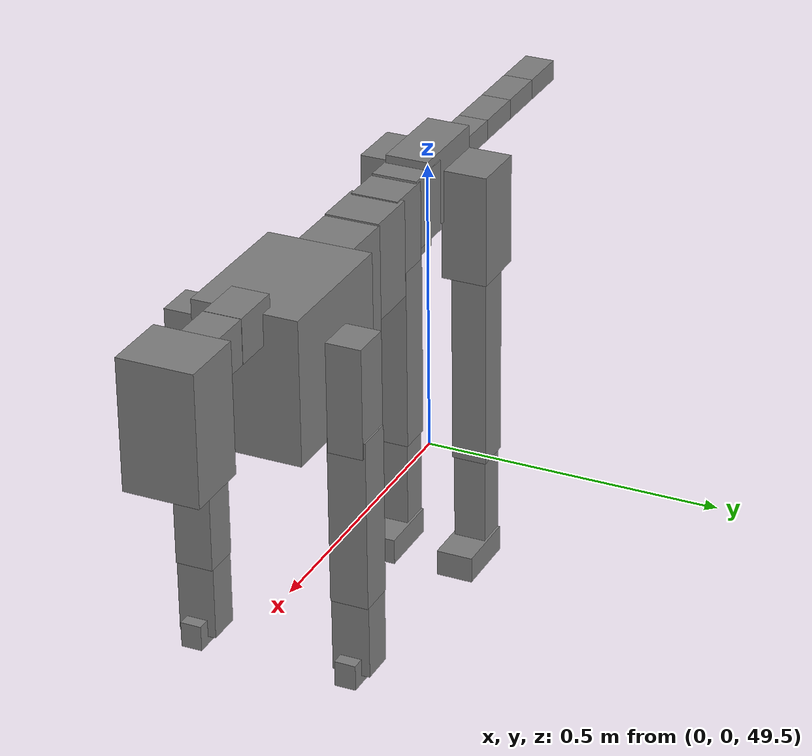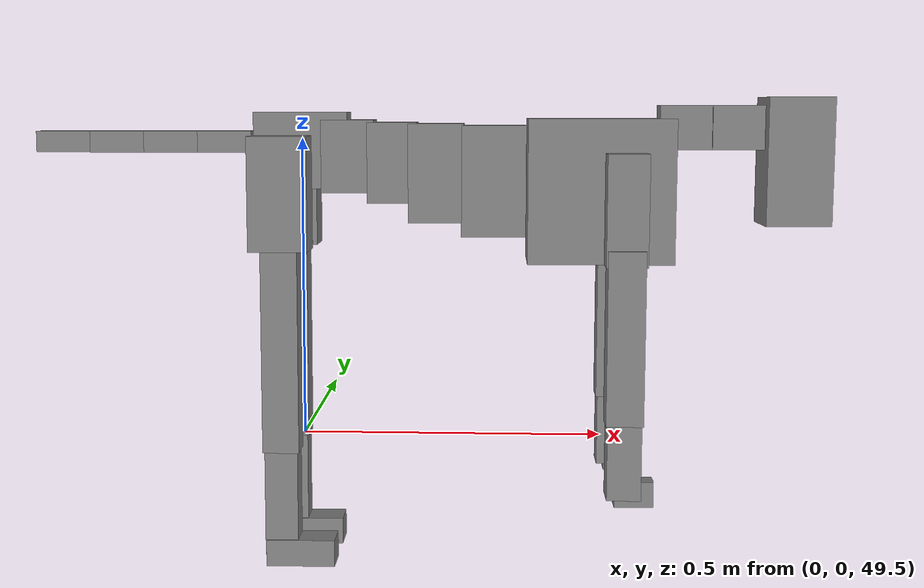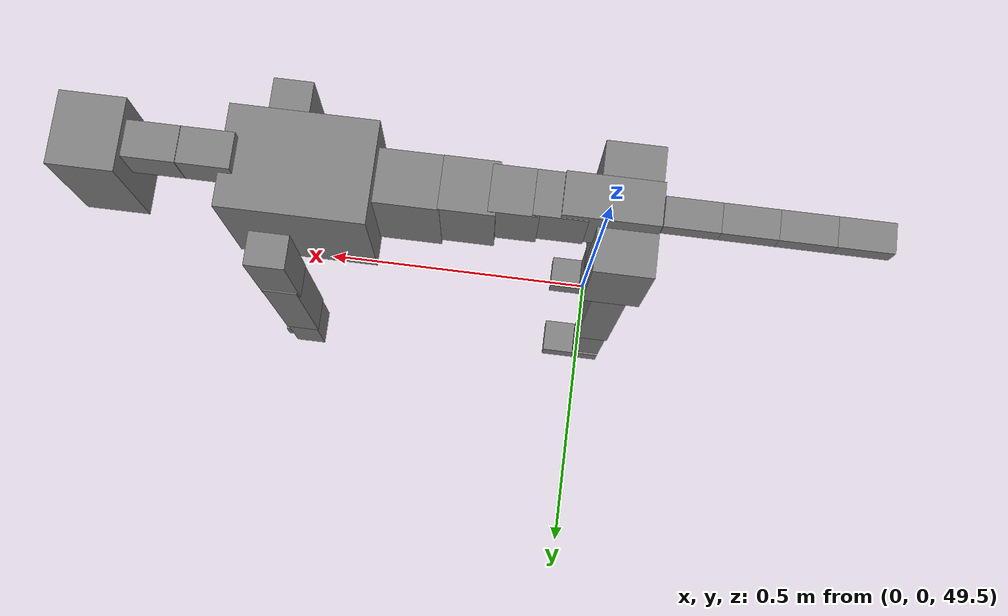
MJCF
<mujoco model="dog">

    <default>
        <joint armature="0.02" stiffness="1" damping="0.2" limited="true"/>
        <geom condim="3" friction="1 0.05 0.05" margin="0.01"/>
        <motor ctrllimited="true" ctrlrange="-1.0 1.0" forcelimited="true" gear="50"/>
    </default>

    <compiler inertiafromgeom="true" angle="radian"/>

    <option timestep="0.016" iterations="50" tolerance="1e-10" solver="Newton" jacobian="dense" cone="pyramidal"/>

    <size nconmax="20000" njmax="60000" nstack="5000000"/>
    <visual>
        <map force="0.1" zfar="30"/>
        <rgba haze="0.15 0.25 0.35 1"/>
        <quality shadowsize="2048"/>
        <global offwidth="800" offheight="800"/>
    </visual>

    <asset>
        <texture type="skybox" builtin="gradient" rgb1="0.3 0.5 0.7" rgb2="0 0 0" width="512" height="512"/>
        <texture name="texplane" type="2d" builtin="checker" rgb1=".2 .3 .4" rgb2=".1 0.15 0.2" width="512" height="512"
                 mark="cross" markrgb=".8 .8 .8"/>
        <texture name="texgeom" type="cube" builtin="flat" mark="cross" width="127" height="1278" rgb1="0.8 0.6 0.4"
                 rgb2="0.8 0.6 0.4" markrgb="1 1 1" random="0.01"/>

        <material name="matplane" reflectance="0.3" texture="texplane" texrepeat="1 1" texuniform="true"/>
        <material name="matgeom" texture="texgeom" texuniform="true" rgba="0.8 0.6 .4 1"/>
    </asset>

    <worldbody>
        <geom name="floor" pos="0 0 0" size="0 0 .25" type="plane" material="matplane" condim="3"/>

        <light directional="false" diffuse=".2 .2 .2" specular="0 0 0" pos="0 0 5" dir="0 0 -1" castshadow="false"/>
        <light mode="targetbodycom" target="torso" directional="false" diffuse=".8 .8 .8" specular="0.3 0.3 0.3"
               pos="0 0 4.0" dir="0 0 -1"/>

        <body name="root" pos="0 0 50">
            <freejoint name="root_1"/>
            <geom type="box" pos="0 0 -0.02" size="0.0774  0.0358  0.063" density="2030"/>

            <body name="spine1" pos="0.054 0 0">
                <joint name="spine1_y" axis="0 1 0" range="0 0.7" limited="true"/>
                <geom type="box" pos="0.02375 0 -0.03" size="0.04375  0.0375  0.05985" density="2030"/>

                <body name="spine2" pos="0.0612 0 0">
                    <joint name="spine2_y" axis="0 1 0" range="-0.15 0.15" limited="true"/>
                    <geom type="box" pos="0.03555  0  -0.04" size="0.04055  0.039  0.06615" density="2030"/>

                    <body name="spine3" pos="0.0730 0 0">
                        <joint name="spine3_y" axis="0 1 0" range="-0.15 0.15" limited="true"/>
                        <geom type="box" pos="0.03555  0  -0.057" size="0.04555  0.0445  0.081" density="2030"/>

                        <body name="spine4" pos="0.0780 0 0">
                            <joint name="spine4_y" axis="0 1 0" range="-0.15 0.15" limited="true"/>
                            <geom type="box" pos="0.05265  0  -0.07" size="0.05265  0.045  0.09135" density="2030"/>

                            <body name="torso" pos="0.1082 0 0">
                                <joint name="torso_y" axis="0 1 0" range="-0.15 0.15" limited="true"/>
                                <geom type="box" pos="0.11925  0  -0.085" size="0.11925  0.085  0.11745"
                                      density="2030"/>

                                <body name="neck1" pos="0.2160  0   0.0180">
                                    <joint name="neck1_y" axis="0 1 0" range="-1.2  -1" limited="true"/>
                                    <geom type="box" pos="0.0423  0  0" size="0.0423  0.03  0.036" density="2325"/>

                                    <body name="neck2" pos="0.0853  0  0">
                                        <joint name="neck2_y" axis="0 1 0" range="0.1  0" limited="true"/>
                                        <geom type="box" pos="0.0423  0  0" size="0.0423  0.03  0.036" density="2325"/>

                                        <body name="head" pos="0.0853  0  0">
                                            <joint name="head_y" axis="0 1 0" range="-0.3  -0.2" limited="true"/>
                                            <geom type="box" pos="0.0531  0  -0.055" size="0.0531  0.06  0.1044"
                                                  density="4030"/>

                                        </body>
                                    </body>
                                </body>

                                <body name="front_shoulder" pos="0.156  0   -0.0480">
                                    <joint name="front_shoulder_y" axis="0 1 0" range="-1 1.5" limited="true"/>
                                    <geom type="box" pos="0 0.13 -0.0626" size="0.0331  0.0283  0.0893" density="1158"/>
                                    <geom type="box" pos="0 -0.13 -0.0626" size="0.0331  0.0283  0.0893"
                                          density="1158"/>

                                    <body name="front_elbow" pos="0  0  -0.1252">
                                        <joint name="front_elbow_y" axis="0 1 0" range="-2 0" limited="true"/>
                                        <geom type="box" pos="0 0.13 -0.1403" size="0.0301  0.0308  0.1403"
                                              density="1081"/>
                                        <geom type="box" pos="0 -0.13 -0.1403" size="0.0301  0.0308  0.1403"
                                              density="1081"/>

                                        <body name="front_wrist" pos="0  0  -0.2806">
                                            <joint name="front_wrist_y" axis="0 1 0" range="-0.2 0" limited="true"/>
                                            <geom type="box" pos="0 0.13 -0.0538" size="0.0276  0.0307  0.0669"
                                                  density="1664"/>
                                            <geom type="box" pos="0 -0.13 -0.0538" size="0.0276  0.0307  0.0669"
                                                  density="1664"/>

                                            <body name="front_finger_end" pos="0  0  -0.1076">
                                                <joint name="front_finger_y" axis="0 1 0" range="-0.4 1"
                                                       limited="true"/>
                                                <geom type="box" pos="0.0172  0.13  -0.0061"
                                                      size="0.0315  0.0172  0.0211" density="1515"/>
                                                <geom type="box" pos="0.0172  -0.13  -0.0061"
                                                      size="0.0315  0.0172  0.0211" density="1515"/>

                                            </body>

                                        </body>
                                    </body>
                                </body>

                            </body>
                        </body>
                    </body>
                </body>
            </body>

            <body name="back_hip" pos="-0.03 0 -0.018">
                <joint name="back_hip_y" axis="0 1 0" range="-1.5 0.3" limited="true"/>
                <geom type="box" pos="0 0.07 -0.0705" size="0.0486  0.0381  0.0933" density="1154"/>
                <geom type="box" pos="0 -0.07 -0.0705" size="0.0486  0.0381  0.0933" density="1154"/>

                <body name="back_knee" pos="0  0  -0.1410">
                    <joint name="back_knee_y" axis="0 1 0" range="0 2.8" limited="true"/>
                    <geom type="box" pos="0 0.07 -0.1706" size="0.0301  0.0297  0.1861" density="1227"/>
                    <geom type="box" pos="0 -0.07 -0.1706" size="0.0301  0.0297  0.1861" density="1227"/>

                    <body name="back_ankle" pos="0  0  -0.3411">
                        <joint name="back_ankle_y" axis="0 1 0" range="-2.2 0" limited="true"/>
                        <geom type="box" pos="0 0.07 -0.0891" size="0.0272  0.0272  0.1004" density="1284"/>
                        <geom type="box" pos="0 -0.07 -0.0891" size="0.0272  0.0272  0.1004" density="1284"/>

                        <body name="back_toe_end" pos="0  0  -0.1782">
                            <joint name="back_toe_y" axis="0 1 0" range="-0.4 1" limited="true"/>
                            <geom type="box" pos="0.0311  0.07  -0.0073" size="0.0570  0.0311  0.0223" density="1515"/>
                            <geom type="box" pos="0.0311  -0.07  -0.0073" size="0.0570  0.0311  0.0223" density="1515"/>

                        </body>
                    </body>
                </body>
            </body>

            <body name="tail1" pos="-0.074 0 -0.006">
                <joint name="tail1_y" axis="0 1 0" range="-0.2 0.2" limited="true"/>
                <geom type="box" pos="-0.0536  0  0" size="0.045  0.025  0.0175" density="1587"/>

                <body name="tail2" pos="-0.09 0 0">
                    <joint name="tail2_y" axis="0 1 0" range="-0.2 0.2" limited="true"/>
                    <geom type="box" pos="-0.0536  0  0" size="0.045  0.025  0.0175" density="1587"/>

                    <body name="tail3" pos="-0.09 0 0">
                        <joint name="tail3_y" axis="0 1 0" range="-0.2 0.2" limited="true"/>
                        <geom type="box" pos="-0.0536  0  0" size="0.045  0.025  0.0175" density="1587"/>

                        <body name="tail4" pos="-0.09 0 0">
                            <joint name="tail4_y" axis="0 1 0" range="-0.2 0.2" limited="true"/>
                            <geom type="box" pos="-0.0536  0  0" size="0.045  0.025  0.0175" density="1587"/>

                        </body>
                    </body>
                </body>
            </body>
        </body>
    </worldbody>

    <actuator>
        <motor joint="spine1_y" forcerange="-150 150     "/>
        <motor joint="spine2_y" forcerange="-150 150     "/>
        <motor joint="spine3_y" forcerange="-150 150     "/>
        <motor joint="spine4_y" forcerange="-150 150     "/>
        <motor joint="torso_y" forcerange="-150 150     "/>
        <motor joint="neck1_y" forcerange="-100 100       "/>
        <motor joint="neck2_y" forcerange="-100 100       "/>
        <motor joint="head_y" forcerange="-150 150       "/>
        <motor joint="front_shoulder_y" forcerange="-162.10 126.27"/>
        <motor joint="front_elbow_y" forcerange="-158.76 165.01"/>
        <motor joint="front_wrist_y" forcerange="-123.58 122.02"/>
        <motor joint="front_finger_y" forcerange="-22.41 29.11"/>
        <motor joint="back_hip_y" forcerange="-319.20 389.05"/>
        <motor joint="back_knee_y" forcerange="-384.52 247.66"/>
        <motor joint="back_angle_y" forcerange="-163.23 171.49"/>
        <motor joint="back_toe_y" forcerange="-50.37 118.55"/>
        <motor joint="tail1_y" forcerange="-50 50     "/>
        <motor joint="tail2_y" forcerange="-50 50     "/>
        <motor joint="tail3_y" forcerange="-50 50     "/>
        <motor joint="tail4_y" forcerange="-50 50     "/>
    </actuator>
</mujoco>
